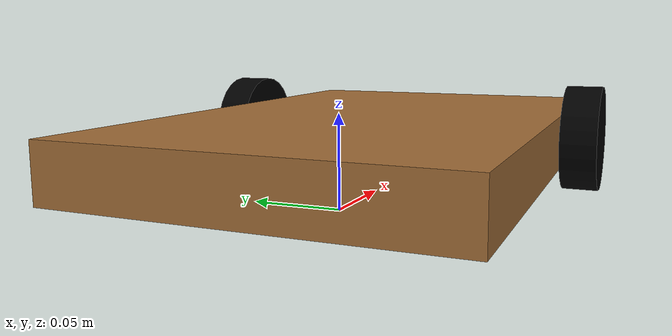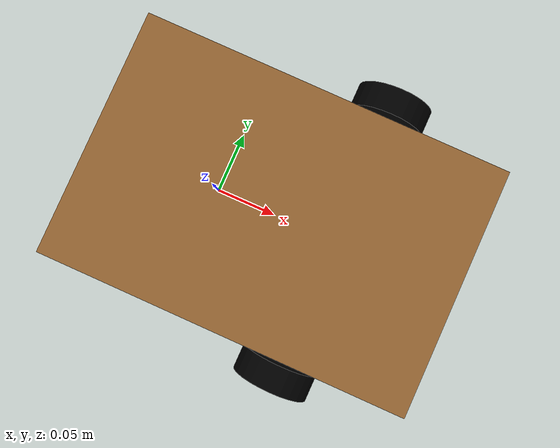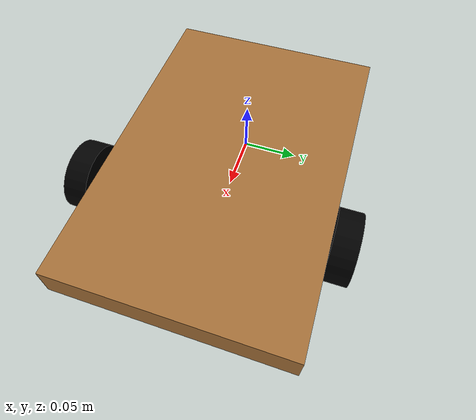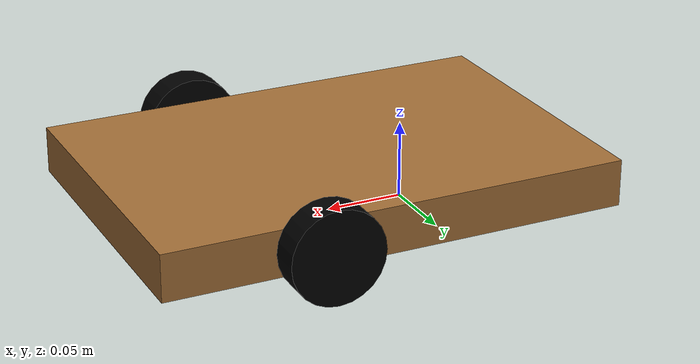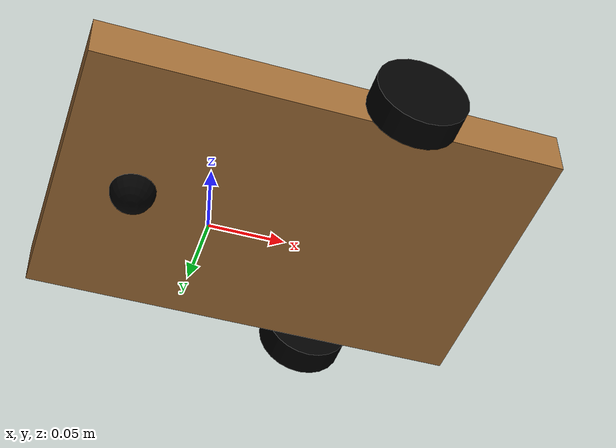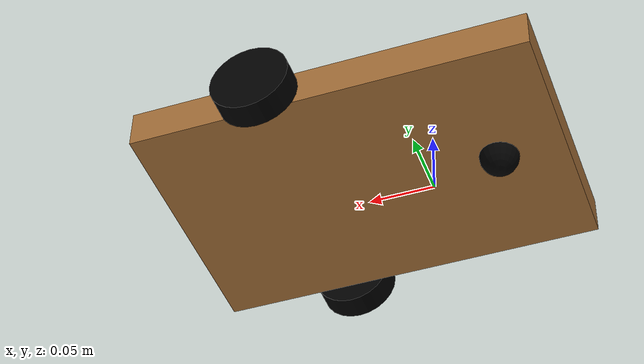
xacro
<?xml version="1.0"?>
<robot name="smr">

  <link name="base_footprint"/>

  <link name="base_link">
    <visual>
      <geometry>
        <box size="0.3 0.2 0.03"/>
      </geometry>
      <material name="avana brown">
        <color rgba="0.6314 0.4275 0.2157 1"/>
      </material>
    </visual>
  </link>

  <joint name="base_joint" type="fixed">
    <parent link="base_footprint"/>
    <child link="base_link" />
    <origin xyz="0.05 0 0.03" rpy="0 0 0"/>
  </joint>

  <link name="right_wheel">
    <visual>
      <geometry>
        <cylinder length="0.02" radius="0.03"/>
      </geometry>
      <material name="black">
	<color rgba="0 0 0 1"/>
      </material>
    </visual>
  </link>

  <joint name="right_wheel_joint" type="continuous">
    <axis xyz="0 0 1"/>
    <parent link="base_link"/>
    <child link="right_wheel"/>
    <origin rpy="-1.5708 0 0" xyz="0.05 -0.11 0"/>
  </joint>

  <link name="left_wheel">
    <visual>
      <geometry>
        <cylinder length="0.02" radius="0.03"/>
      </geometry>
      <material name="black">
	<color rgba="0 0 0 1"/>
      </material>
    </visual>
  </link>

  <joint name="left_wheel_joint" type="continuous">
    <axis xyz="0 0 1"/>
    <parent link="base_link"/>
    <child link="left_wheel"/>
    <origin rpy="-1.5708 0 0" xyz="0.05 0.11 0"/>
  </joint>

  <link name="caster_wheel">
    <visual>
      <geometry>
        <sphere radius="0.015"/>
      </geometry>
      <material name="black">
	<color rgba="0 0 0 1"/>
      </material>
    </visual>
  </link>

  <joint name="caster_wheel_joint" type="fixed">
    <axis xyz="0 1 0"/>
    <parent link="base_link"/>
    <child link="caster_wheel"/>
    <origin rpy="0 0 0" xyz="-0.1 0 -0.015"/>
  </joint>

</robot>
